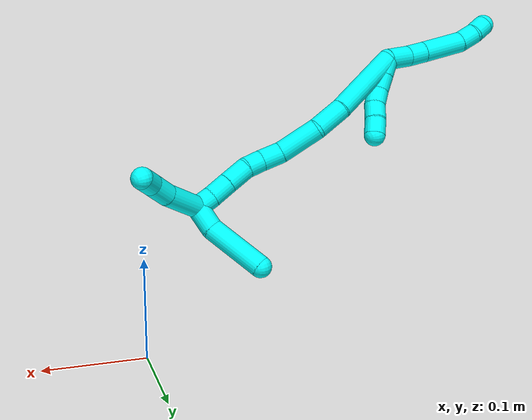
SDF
<sdf version="1.7">
 <world name="default">
  <model name="3">
   <static>0</static>
   <link name="3">
    <collision name="collision-cylinder-e_1_2_8">
     <pose>0.000597 -0.001765 0.016006 0.109822 0.037066 0.002038</pose>
     <geometry><cylinder><radius>0.0125</radius><length>0.032228</length></cylinder></geometry>
     <surface>
      <friction><ode><mu>1.16</mu><mu2>1.16</mu2><slip1>0</slip1><slip2>0</slip2></ode></friction>
      <contact><ode><kp>1e+06</kp><kd>1</kd><max_vel>0</max_vel><min_depth>0.001</min_depth></ode></contact>
     </surface>
    </collision>
    <visual name="visual-cylinder-e_1_2_8">
     <pose>0.000597 -0.001765 0.016006 0.109822 0.037066 0.002038</pose>
     <geometry><cylinder><radius>0.0125</radius><length>0.032228</length></cylinder></geometry>
     <material><ambient>0.003922 1 0.996078 1</ambient></material>
    </visual>
    <collision name="collision-cylinder-e_2_8_9">
     <pose>-0.000765 -0.006404 0.043136 0.252819 -0.168927 -0.021519</pose>
     <geometry><cylinder><radius>0.0125</radius><length>0.02331</length></cylinder></geometry>
     <surface>
      <friction><ode><mu>1.16</mu><mu2>1.16</mu2><slip1>0</slip1><slip2>0</slip2></ode></friction>
      <contact><ode><kp>1e+06</kp><kd>1</kd><max_vel>0</max_vel><min_depth>0.001</min_depth></ode></contact>
     </surface>
    </collision>
    <visual name="visual-cylinder-e_2_8_9">
     <pose>-0.000765 -0.006404 0.043136 0.252819 -0.168927 -0.021519</pose>
     <geometry><cylinder><radius>0.0125</radius><length>0.02331</length></cylinder></geometry>
     <material><ambient>0.003922 1 0.996078 1</ambient></material>
    </visual>
    <collision name="collision-cylinder-e_3_9_10">
     <pose>-0.008085 -0.016206 0.078914 0.273954 -0.20634 -0.028541</pose>
     <geometry><cylinder><radius>0.0125</radius><length>0.052328</length></cylinder></geometry>
     <surface>
      <friction><ode><mu>1.16</mu><mu2>1.16</mu2><slip1>0</slip1><slip2>0</slip2></ode></friction>
      <contact><ode><kp>1e+06</kp><kd>1</kd><max_vel>0</max_vel><min_depth>0.001</min_depth></ode></contact>
     </surface>
    </collision>
    <visual name="visual-cylinder-e_3_9_10">
     <pose>-0.008085 -0.016206 0.078914 0.273954 -0.20634 -0.028541</pose>
     <geometry><cylinder><radius>0.0125</radius><length>0.052328</length></cylinder></geometry>
     <material><ambient>0.003922 1 0.996078 1</ambient></material>
    </visual>
    <collision name="collision-cylinder-e_4_10_11">
     <pose>-0.018066 -0.024517 0.113426 0.139343 -0.434596 -0.030812</pose>
     <geometry><cylinder><radius>0.0125</radius><length>0.021948</length></cylinder></geometry>
     <surface>
      <friction><ode><mu>1.16</mu><mu2>1.16</mu2><slip1>0</slip1><slip2>0</slip2></ode></friction>
      <contact><ode><kp>1e+06</kp><kd>1</kd><max_vel>0</max_vel><min_depth>0.001</min_depth></ode></contact>
     </surface>
    </collision>
    <visual name="visual-cylinder-e_4_10_11">
     <pose>-0.018066 -0.024517 0.113426 0.139343 -0.434596 -0.030812</pose>
     <geometry><cylinder><radius>0.0125</radius><length>0.021948</length></cylinder></geometry>
     <material><ambient>0.003922 1 0.996078 1</ambient></material>
    </visual>
    <collision name="collision-cylinder-e_5_11_6">
     <pose>-0.025878 -0.024616 0.132771 -0.134444 -0.321774 0.021851</pose>
     <geometry><cylinder><radius>0.0125</radius><length>0.020186</length></cylinder></geometry>
     <surface>
      <friction><ode><mu>1.16</mu><mu2>1.16</mu2><slip1>0</slip1><slip2>0</slip2></ode></friction>
      <contact><ode><kp>1e+06</kp><kd>1</kd><max_vel>0</max_vel><min_depth>0.001</min_depth></ode></contact>
     </surface>
    </collision>
    <visual name="visual-cylinder-e_5_11_6">
     <pose>-0.025878 -0.024616 0.132771 -0.134444 -0.321774 0.021851</pose>
     <geometry><cylinder><radius>0.0125</radius><length>0.020186</length></cylinder></geometry>
     <material><ambient>0.003922 1 0.996078 1</ambient></material>
    </visual>
    <collision name="collision-cylinder-e_1_2_12">
     <pose>0.006964 -0.004071 -0.00591 2.53836 0.770407 1.83262</pose>
     <geometry><cylinder><radius>0.0125</radius><length>0.02</length></cylinder></geometry>
     <surface>
      <friction><ode><mu>1.16</mu><mu2>1.16</mu2><slip1>0</slip1><slip2>0</slip2></ode></friction>
      <contact><ode><kp>1e+06</kp><kd>1</kd><max_vel>0</max_vel><min_depth>0.001</min_depth></ode></contact>
     </surface>
    </collision>
    <visual name="visual-cylinder-e_1_2_12">
     <pose>0.006964 -0.004071 -0.00591 2.53836 0.770407 1.83262</pose>
     <geometry><cylinder><radius>0.0125</radius><length>0.02</length></cylinder></geometry>
     <material><ambient>0.003922 1 0.996078 1</ambient></material>
    </visual>
    <collision name="collision-cylinder-e_2_12_13">
     <pose>0.020896 -0.012168 -0.017756 2.54576 0.7709 1.84597</pose>
     <geometry><cylinder><radius>0.0125</radius><length>0.02</length></cylinder></geometry>
     <surface>
      <friction><ode><mu>1.16</mu><mu2>1.16</mu2><slip1>0</slip1><slip2>0</slip2></ode></friction>
      <contact><ode><kp>1e+06</kp><kd>1</kd><max_vel>0</max_vel><min_depth>0.001</min_depth></ode></contact>
     </surface>
    </collision>
    <visual name="visual-cylinder-e_2_12_13">
     <pose>0.020896 -0.012168 -0.017756 2.54576 0.7709 1.84597</pose>
     <geometry><cylinder><radius>0.0125</radius><length>0.02</length></cylinder></geometry>
     <material><ambient>0.003922 1 0.996078 1</ambient></material>
    </visual>
    <collision name="collision-cylinder-e_3_13_14">
     <pose>0.03346 -0.02148 -0.030075 2.44977 0.593902 1.40789</pose>
     <geometry><cylinder><radius>0.0125</radius><length>0.02</length></cylinder></geometry>
     <surface>
      <friction><ode><mu>1.16</mu><mu2>1.16</mu2><slip1>0</slip1><slip2>0</slip2></ode></friction>
      <contact><ode><kp>1e+06</kp><kd>1</kd><max_vel>0</max_vel><min_depth>0.001</min_depth></ode></contact>
     </surface>
    </collision>
    <visual name="visual-cylinder-e_3_13_14">
     <pose>0.03346 -0.02148 -0.030075 2.44977 0.593902 1.40789</pose>
     <geometry><cylinder><radius>0.0125</radius><length>0.02</length></cylinder></geometry>
     <material><ambient>0.003922 1 0.996078 1</ambient></material>
    </visual>
    <collision name="collision-cylinder-e_4_14_15">
     <pose>0.043509 -0.033997 -0.041739 2.20174 0.461521 0.866574</pose>
     <geometry><cylinder><radius>0.0125</radius><length>0.02</length></cylinder></geometry>
     <surface>
      <friction><ode><mu>1.16</mu><mu2>1.16</mu2><slip1>0</slip1><slip2>0</slip2></ode></friction>
      <contact><ode><kp>1e+06</kp><kd>1</kd><max_vel>0</max_vel><min_depth>0.001</min_depth></ode></contact>
     </surface>
    </collision>
    <visual name="visual-cylinder-e_4_14_15">
     <pose>0.043509 -0.033997 -0.041739 2.20174 0.461521 0.866574</pose>
     <geometry><cylinder><radius>0.0125</radius><length>0.02</length></cylinder></geometry>
     <material><ambient>0.003922 1 0.996078 1</ambient></material>
    </visual>
    <collision name="collision-cylinder-e_5_15_5">
     <pose>0.053437 -0.04761 -0.052433 2.27409 0.579337 1.14359</pose>
     <geometry><cylinder><radius>0.0125</radius><length>0.02</length></cylinder></geometry>
     <surface>
      <friction><ode><mu>1.16</mu><mu2>1.16</mu2><slip1>0</slip1><slip2>0</slip2></ode></friction>
      <contact><ode><kp>1e+06</kp><kd>1</kd><max_vel>0</max_vel><min_depth>0.001</min_depth></ode></contact>
     </surface>
    </collision>
    <visual name="visual-cylinder-e_5_15_5">
     <pose>0.053437 -0.04761 -0.052433 2.27409 0.579337 1.14359</pose>
     <geometry><cylinder><radius>0.0125</radius><length>0.02</length></cylinder></geometry>
     <material><ambient>0.003922 1 0.996078 1</ambient></material>
    </visual>
    <collision name="collision-cylinder-e_1_2_16">
     <pose>0.019473 -0.00716 -0.040913 2.96834 0.438406 2.39822</pose>
     <geometry><cylinder><radius>0.0125</radius><length>0.091745</length></cylinder></geometry>
     <surface>
      <friction><ode><mu>1.16</mu><mu2>1.16</mu2><slip1>0</slip1><slip2>0</slip2></ode></friction>
      <contact><ode><kp>1e+06</kp><kd>1</kd><max_vel>0</max_vel><min_depth>0.001</min_depth></ode></contact>
     </surface>
    </collision>
    <visual name="visual-cylinder-e_1_2_16">
     <pose>0.019473 -0.00716 -0.040913 2.96834 0.438406 2.39822</pose>
     <geometry><cylinder><radius>0.0125</radius><length>0.091745</length></cylinder></geometry>
     <material><ambient>0.003922 1 0.996078 1</ambient></material>
    </visual>
    <collision name="collision-cylinder-e_2_16_17">
     <pose>0.047945 -0.014459 -0.099012 3.13349 0.482348 3.10866</pose>
     <geometry><cylinder><radius>0.0125</radius><length>0.038801</length></cylinder></geometry>
     <surface>
      <friction><ode><mu>1.16</mu><mu2>1.16</mu2><slip1>0</slip1><slip2>0</slip2></ode></friction>
      <contact><ode><kp>1e+06</kp><kd>1</kd><max_vel>0</max_vel><min_depth>0.001</min_depth></ode></contact>
     </surface>
    </collision>
    <visual name="visual-cylinder-e_2_16_17">
     <pose>0.047945 -0.014459 -0.099012 3.13349 0.482348 3.10866</pose>
     <geometry><cylinder><radius>0.0125</radius><length>0.038801</length></cylinder></geometry>
     <material><ambient>0.003922 1 0.996078 1</ambient></material>
    </visual>
    <collision name="collision-cylinder-e_3_17_18">
     <pose>0.071999 -0.008281 -0.134868 -2.81531 0.652296 -2.23574</pose>
     <geometry><cylinder><radius>0.0125</radius><length>0.049603</length></cylinder></geometry>
     <surface>
      <friction><ode><mu>1.16</mu><mu2>1.16</mu2><slip1>0</slip1><slip2>0</slip2></ode></friction>
      <contact><ode><kp>1e+06</kp><kd>1</kd><max_vel>0</max_vel><min_depth>0.001</min_depth></ode></contact>
     </surface>
    </collision>
    <visual name="visual-cylinder-e_3_17_18">
     <pose>0.071999 -0.008281 -0.134868 -2.81531 0.652296 -2.23574</pose>
     <geometry><cylinder><radius>0.0125</radius><length>0.049603</length></cylinder></geometry>
     <material><ambient>0.003922 1 0.996078 1</ambient></material>
    </visual>
    <collision name="collision-cylinder-e_4_18_19">
     <pose>0.091735 0.001582 -0.164994 -2.84146 0.372186 -1.78832</pose>
     <geometry><cylinder><radius>0.0125</radius><length>0.025747</length></cylinder></geometry>
     <surface>
      <friction><ode><mu>1.16</mu><mu2>1.16</mu2><slip1>0</slip1><slip2>0</slip2></ode></friction>
      <contact><ode><kp>1e+06</kp><kd>1</kd><max_vel>0</max_vel><min_depth>0.001</min_depth></ode></contact>
     </surface>
    </collision>
    <visual name="visual-cylinder-e_4_18_19">
     <pose>0.091735 0.001582 -0.164994 -2.84146 0.372186 -1.78832</pose>
     <geometry><cylinder><radius>0.0125</radius><length>0.025747</length></cylinder></geometry>
     <material><ambient>0.003922 1 0.996078 1</ambient></material>
    </visual>
    <collision name="collision-cylinder-e_5_19_20">
     <pose>0.098943 0.006205 -0.186399 -3.03376 0.24731 -2.32228</pose>
     <geometry><cylinder><radius>0.0125</radius><length>0.020642</length></cylinder></geometry>
     <surface>
      <friction><ode><mu>1.16</mu><mu2>1.16</mu2><slip1>0</slip1><slip2>0</slip2></ode></friction>
      <contact><ode><kp>1e+06</kp><kd>1</kd><max_vel>0</max_vel><min_depth>0.001</min_depth></ode></contact>
     </surface>
    </collision>
    <visual name="visual-cylinder-e_5_19_20">
     <pose>0.098943 0.006205 -0.186399 -3.03376 0.24731 -2.32228</pose>
     <geometry><cylinder><radius>0.0125</radius><length>0.020642</length></cylinder></geometry>
     <material><ambient>0.003922 1 0.996078 1</ambient></material>
    </visual>
    <collision name="collision-cylinder-e_6_20_21">
     <pose>0.107941 0.00704 -0.208957 3.12243 0.474113 3.06233</pose>
     <geometry><cylinder><radius>0.0125</radius><length>0.02835</length></cylinder></geometry>
     <surface>
      <friction><ode><mu>1.16</mu><mu2>1.16</mu2><slip1>0</slip1><slip2>0</slip2></ode></friction>
      <contact><ode><kp>1e+06</kp><kd>1</kd><max_vel>0</max_vel><min_depth>0.001</min_depth></ode></contact>
     </surface>
    </collision>
    <visual name="visual-cylinder-e_6_20_21">
     <pose>0.107941 0.00704 -0.208957 3.12243 0.474113 3.06233</pose>
     <geometry><cylinder><radius>0.0125</radius><length>0.02835</length></cylinder></geometry>
     <material><ambient>0.003922 1 0.996078 1</ambient></material>
    </visual>
    <collision name="collision-cylinder-e_7_21_22">
     <pose>0.120353 0.006569 -0.232545 3.12071 0.495849 3.05912</pose>
     <geometry><cylinder><radius>0.0125</radius><length>0.02497</length></cylinder></geometry>
     <surface>
      <friction><ode><mu>1.16</mu><mu2>1.16</mu2><slip1>0</slip1><slip2>0</slip2></ode></friction>
      <contact><ode><kp>1e+06</kp><kd>1</kd><max_vel>0</max_vel><min_depth>0.001</min_depth></ode></contact>
     </surface>
    </collision>
    <visual name="visual-cylinder-e_7_21_22">
     <pose>0.120353 0.006569 -0.232545 3.12071 0.495849 3.05912</pose>
     <geometry><cylinder><radius>0.0125</radius><length>0.02497</length></cylinder></geometry>
     <material><ambient>0.003922 1 0.996078 1</ambient></material>
    </visual>
    <collision name="collision-cylinder-e_8_22_1">
     <pose>0.130322 0.006551 -0.252751 -3.11872 0.411558 -3.03212</pose>
     <geometry><cylinder><radius>0.0125</radius><length>0.020141</length></cylinder></geometry>
     <surface>
      <friction><ode><mu>1.16</mu><mu2>1.16</mu2><slip1>0</slip1><slip2>0</slip2></ode></friction>
      <contact><ode><kp>1e+06</kp><kd>1</kd><max_vel>0</max_vel><min_depth>0.001</min_depth></ode></contact>
     </surface>
    </collision>
    <visual name="visual-cylinder-e_8_22_1">
     <pose>0.130322 0.006551 -0.252751 -3.11872 0.411558 -3.03212</pose>
     <geometry><cylinder><radius>0.0125</radius><length>0.020141</length></cylinder></geometry>
     <material><ambient>0.003922 1 0.996078 1</ambient></material>
    </visual>
    <collision name="collision-cylinder-e_1_1_23">
     <pose>0.121739 0.011421 -0.282747 -2.92091 -0.534891 2.37313</pose>
     <geometry><cylinder><radius>0.0125</radius><length>0.049481</length></cylinder></geometry>
     <surface>
      <friction><ode><mu>1.16</mu><mu2>1.16</mu2><slip1>0</slip1><slip2>0</slip2></ode></friction>
      <contact><ode><kp>1e+06</kp><kd>1</kd><max_vel>0</max_vel><min_depth>0.001</min_depth></ode></contact>
     </surface>
    </collision>
    <visual name="visual-cylinder-e_1_1_23">
     <pose>0.121739 0.011421 -0.282747 -2.92091 -0.534891 2.37313</pose>
     <geometry><cylinder><radius>0.0125</radius><length>0.049481</length></cylinder></geometry>
     <material><ambient>0.003922 1 0.996078 1</ambient></material>
    </visual>
    <collision name="collision-cylinder-e_2_23_24">
     <pose>0.100886 0.018933 -0.313387 -2.86021 -0.675998 2.37552</pose>
     <geometry><cylinder><radius>0.0125</radius><length>0.026344</length></cylinder></geometry>
     <surface>
      <friction><ode><mu>1.16</mu><mu2>1.16</mu2><slip1>0</slip1><slip2>0</slip2></ode></friction>
      <contact><ode><kp>1e+06</kp><kd>1</kd><max_vel>0</max_vel><min_depth>0.001</min_depth></ode></contact>
     </surface>
    </collision>
    <visual name="visual-cylinder-e_2_23_24">
     <pose>0.100886 0.018933 -0.313387 -2.86021 -0.675998 2.37552</pose>
     <geometry><cylinder><radius>0.0125</radius><length>0.026344</length></cylinder></geometry>
     <material><ambient>0.003922 1 0.996078 1</ambient></material>
    </visual>
    <collision name="collision-cylinder-e_3_24_4">
     <pose>0.084694 0.020618 -0.332288 3.01292 -0.717858 -2.80147</pose>
     <geometry><cylinder><radius>0.0125</radius><length>0.024175</length></cylinder></geometry>
     <surface>
      <friction><ode><mu>1.16</mu><mu2>1.16</mu2><slip1>0</slip1><slip2>0</slip2></ode></friction>
      <contact><ode><kp>1e+06</kp><kd>1</kd><max_vel>0</max_vel><min_depth>0.001</min_depth></ode></contact>
     </surface>
    </collision>
    <visual name="visual-cylinder-e_3_24_4">
     <pose>0.084694 0.020618 -0.332288 3.01292 -0.717858 -2.80147</pose>
     <geometry><cylinder><radius>0.0125</radius><length>0.024175</length></cylinder></geometry>
     <material><ambient>0.003922 1 0.996078 1</ambient></material>
    </visual>
    <collision name="collision-cylinder-e_1_1_25">
     <pose>0.141371 -0.006089 -0.26025 1.43709 0.496252 0.436057</pose>
     <geometry><cylinder><radius>0.0125</radius><length>0.029491</length></cylinder></geometry>
     <surface>
      <friction><ode><mu>1.16</mu><mu2>1.16</mu2><slip1>0</slip1><slip2>0</slip2></ode></friction>
      <contact><ode><kp>1e+06</kp><kd>1</kd><max_vel>0</max_vel><min_depth>0.001</min_depth></ode></contact>
     </surface>
    </collision>
    <visual name="visual-cylinder-e_1_1_25">
     <pose>0.141371 -0.006089 -0.26025 1.43709 0.496252 0.436057</pose>
     <geometry><cylinder><radius>0.0125</radius><length>0.029491</length></cylinder></geometry>
     <material><ambient>0.003922 1 0.996078 1</ambient></material>
    </visual>
    <collision name="collision-cylinder-e_2_25_3">
     <pose>0.154209 -0.052729 -0.250314 1.33251 0.165757 0.130428</pose>
     <geometry><cylinder><radius>0.0125</radius><length>0.070509</length></cylinder></geometry>
     <surface>
      <friction><ode><mu>1.16</mu><mu2>1.16</mu2><slip1>0</slip1><slip2>0</slip2></ode></friction>
      <contact><ode><kp>1e+06</kp><kd>1</kd><max_vel>0</max_vel><min_depth>0.001</min_depth></ode></contact>
     </surface>
    </collision>
    <visual name="visual-cylinder-e_2_25_3">
     <pose>0.154209 -0.052729 -0.250314 1.33251 0.165757 0.130428</pose>
     <geometry><cylinder><radius>0.0125</radius><length>0.070509</length></cylinder></geometry>
     <material><ambient>0.003922 1 0.996078 1</ambient></material>
    </visual>
    <collision name="collision-sphere-3">
     <pose>0.160026 -0.086518 -0.242107 0 -0 0</pose>
     <geometry><sphere><radius>0.0125</radius></sphere></geometry>
     <surface>
      <friction><ode><mu>1.16</mu><mu2>1.16</mu2><slip1>0</slip1><slip2>0</slip2></ode></friction>
      <contact><ode><kp>1e+06</kp><kd>1</kd><max_vel>0</max_vel><min_depth>0.001</min_depth></ode></contact>
     </surface>
    </collision>
    <visual name="visual-sphere-3">
     <pose>0.160026 -0.086518 -0.242107 0 -0 0</pose>
     <geometry><sphere><radius>0.0125</radius></sphere></geometry>
     <material><ambient>0.003922 1 0.996078 1</ambient></material>
    </visual>
    <collision name="collision-sphere-25">
     <pose>0.148392 -0.018941 -0.258522 0 -0 0</pose>
     <geometry><sphere><radius>0.0125</radius></sphere></geometry>
     <surface>
      <friction><ode><mu>1.16</mu><mu2>1.16</mu2><slip1>0</slip1><slip2>0</slip2></ode></friction>
      <contact><ode><kp>1e+06</kp><kd>1</kd><max_vel>0</max_vel><min_depth>0.001</min_depth></ode></contact>
     </surface>
    </collision>
    <visual name="visual-sphere-25">
     <pose>0.148392 -0.018941 -0.258522 0 -0 0</pose>
     <geometry><sphere><radius>0.0125</radius></sphere></geometry>
     <material><ambient>0.003922 1 0.996078 1</ambient></material>
    </visual>
    <collision name="collision-sphere-4">
     <pose>0.076743 0.01945 -0.341317 0 -0 0</pose>
     <geometry><sphere><radius>0.0125</radius></sphere></geometry>
     <surface>
      <friction><ode><mu>1.16</mu><mu2>1.16</mu2><slip1>0</slip1><slip2>0</slip2></ode></friction>
      <contact><ode><kp>1e+06</kp><kd>1</kd><max_vel>0</max_vel><min_depth>0.001</min_depth></ode></contact>
     </surface>
    </collision>
    <visual name="visual-sphere-4">
     <pose>0.076743 0.01945 -0.341317 0 -0 0</pose>
     <geometry><sphere><radius>0.0125</radius></sphere></geometry>
     <material><ambient>0.003922 1 0.996078 1</ambient></material>
    </visual>
    <collision name="collision-sphere-24">
     <pose>0.092645 0.021787 -0.323258 0 -0 0</pose>
     <geometry><sphere><radius>0.0125</radius></sphere></geometry>
     <surface>
      <friction><ode><mu>1.16</mu><mu2>1.16</mu2><slip1>0</slip1><slip2>0</slip2></ode></friction>
      <contact><ode><kp>1e+06</kp><kd>1</kd><max_vel>0</max_vel><min_depth>0.001</min_depth></ode></contact>
     </surface>
    </collision>
    <visual name="visual-sphere-24">
     <pose>0.092645 0.021787 -0.323258 0 -0 0</pose>
     <geometry><sphere><radius>0.0125</radius></sphere></geometry>
     <material><ambient>0.003922 1 0.996078 1</ambient></material>
    </visual>
    <collision name="collision-sphere-23">
     <pose>0.109128 0.01608 -0.303516 0 -0 0</pose>
     <geometry><sphere><radius>0.0125</radius></sphere></geometry>
     <surface>
      <friction><ode><mu>1.16</mu><mu2>1.16</mu2><slip1>0</slip1><slip2>0</slip2></ode></friction>
      <contact><ode><kp>1e+06</kp><kd>1</kd><max_vel>0</max_vel><min_depth>0.001</min_depth></ode></contact>
     </surface>
    </collision>
    <visual name="visual-sphere-23">
     <pose>0.109128 0.01608 -0.303516 0 -0 0</pose>
     <geometry><sphere><radius>0.0125</radius></sphere></geometry>
     <material><ambient>0.003922 1 0.996078 1</ambient></material>
    </visual>
    <collision name="collision-sphere-1">
     <pose>0.13435 0.006762 -0.261979 0 -0 0</pose>
     <geometry><sphere><radius>0.0125</radius></sphere></geometry>
     <surface>
      <friction><ode><mu>1.16</mu><mu2>1.16</mu2><slip1>0</slip1><slip2>0</slip2></ode></friction>
      <contact><ode><kp>1e+06</kp><kd>1</kd><max_vel>0</max_vel><min_depth>0.001</min_depth></ode></contact>
     </surface>
    </collision>
    <visual name="visual-sphere-1">
     <pose>0.13435 0.006762 -0.261979 0 -0 0</pose>
     <geometry><sphere><radius>0.0125</radius></sphere></geometry>
     <material><ambient>0.003922 1 0.996078 1</ambient></material>
    </visual>
    <collision name="collision-sphere-22">
     <pose>0.126293 0.00634 -0.243524 0 -0 0</pose>
     <geometry><sphere><radius>0.0125</radius></sphere></geometry>
     <surface>
      <friction><ode><mu>1.16</mu><mu2>1.16</mu2><slip1>0</slip1><slip2>0</slip2></ode></friction>
      <contact><ode><kp>1e+06</kp><kd>1</kd><max_vel>0</max_vel><min_depth>0.001</min_depth></ode></contact>
     </surface>
    </collision>
    <visual name="visual-sphere-22">
     <pose>0.126293 0.00634 -0.243524 0 -0 0</pose>
     <geometry><sphere><radius>0.0125</radius></sphere></geometry>
     <material><ambient>0.003922 1 0.996078 1</ambient></material>
    </visual>
    <collision name="collision-sphere-21">
     <pose>0.114413 0.006798 -0.221567 0 -0 0</pose>
     <geometry><sphere><radius>0.0125</radius></sphere></geometry>
     <surface>
      <friction><ode><mu>1.16</mu><mu2>1.16</mu2><slip1>0</slip1><slip2>0</slip2></ode></friction>
      <contact><ode><kp>1e+06</kp><kd>1</kd><max_vel>0</max_vel><min_depth>0.001</min_depth></ode></contact>
     </surface>
    </collision>
    <visual name="visual-sphere-21">
     <pose>0.114413 0.006798 -0.221567 0 -0 0</pose>
     <geometry><sphere><radius>0.0125</radius></sphere></geometry>
     <material><ambient>0.003922 1 0.996078 1</ambient></material>
    </visual>
    <collision name="collision-sphere-6">
     <pose>-0.02907 -0.023332 0.14226 0 -0 0</pose>
     <geometry><sphere><radius>0.0125</radius></sphere></geometry>
     <surface>
      <friction><ode><mu>1.16</mu><mu2>1.16</mu2><slip1>0</slip1><slip2>0</slip2></ode></friction>
      <contact><ode><kp>1e+06</kp><kd>1</kd><max_vel>0</max_vel><min_depth>0.001</min_depth></ode></contact>
     </surface>
    </collision>
    <visual name="visual-sphere-6">
     <pose>-0.02907 -0.023332 0.14226 0 -0 0</pose>
     <geometry><sphere><radius>0.0125</radius></sphere></geometry>
     <material><ambient>0.003922 1 0.996078 1</ambient></material>
    </visual>
    <collision name="collision-sphere-11">
     <pose>-0.022687 -0.025899 0.123283 0 -0 0</pose>
     <geometry><sphere><radius>0.0125</radius></sphere></geometry>
     <surface>
      <friction><ode><mu>1.16</mu><mu2>1.16</mu2><slip1>0</slip1><slip2>0</slip2></ode></friction>
      <contact><ode><kp>1e+06</kp><kd>1</kd><max_vel>0</max_vel><min_depth>0.001</min_depth></ode></contact>
     </surface>
    </collision>
    <visual name="visual-sphere-11">
     <pose>-0.022687 -0.025899 0.123283 0 -0 0</pose>
     <geometry><sphere><radius>0.0125</radius></sphere></geometry>
     <material><ambient>0.003922 1 0.996078 1</ambient></material>
    </visual>
    <collision name="collision-sphere-10">
     <pose>-0.013446 -0.023134 0.103568 0 -0 0</pose>
     <geometry><sphere><radius>0.0125</radius></sphere></geometry>
     <surface>
      <friction><ode><mu>1.16</mu><mu2>1.16</mu2><slip1>0</slip1><slip2>0</slip2></ode></friction>
      <contact><ode><kp>1e+06</kp><kd>1</kd><max_vel>0</max_vel><min_depth>0.001</min_depth></ode></contact>
     </surface>
    </collision>
    <visual name="visual-sphere-10">
     <pose>-0.013446 -0.023134 0.103568 0 -0 0</pose>
     <geometry><sphere><radius>0.0125</radius></sphere></geometry>
     <material><ambient>0.003922 1 0.996078 1</ambient></material>
    </visual>
    <collision name="collision-sphere-9">
     <pose>-0.002725 -0.009278 0.05426 0 -0 0</pose>
     <geometry><sphere><radius>0.0125</radius></sphere></geometry>
     <surface>
      <friction><ode><mu>1.16</mu><mu2>1.16</mu2><slip1>0</slip1><slip2>0</slip2></ode></friction>
      <contact><ode><kp>1e+06</kp><kd>1</kd><max_vel>0</max_vel><min_depth>0.001</min_depth></ode></contact>
     </surface>
    </collision>
    <visual name="visual-sphere-9">
     <pose>-0.002725 -0.009278 0.05426 0 -0 0</pose>
     <geometry><sphere><radius>0.0125</radius></sphere></geometry>
     <material><ambient>0.003922 1 0.996078 1</ambient></material>
    </visual>
    <collision name="collision-sphere-2">
     <geometry><sphere><radius>0.0125</radius></sphere></geometry>
     <surface>
      <friction><ode><mu>1.16</mu><mu2>1.16</mu2><slip1>0</slip1><slip2>0</slip2></ode></friction>
      <contact><ode><kp>1e+06</kp><kd>1</kd><max_vel>0</max_vel><min_depth>0.001</min_depth></ode></contact>
     </surface>
    </collision>
    <visual name="visual-sphere-2">
     <geometry><sphere><radius>0.0125</radius></sphere></geometry>
     <material><ambient>0.003922 1 0.996078 1</ambient></material>
    </visual>
    <collision name="collision-sphere-19">
     <pose>0.096417 0.005128 -0.17645 0 -0 0</pose>
     <geometry><sphere><radius>0.0125</radius></sphere></geometry>
     <surface>
      <friction><ode><mu>1.16</mu><mu2>1.16</mu2><slip1>0</slip1><slip2>0</slip2></ode></friction>
      <contact><ode><kp>1e+06</kp><kd>1</kd><max_vel>0</max_vel><min_depth>0.001</min_depth></ode></contact>
     </surface>
    </collision>
    <visual name="visual-sphere-19">
     <pose>0.096417 0.005128 -0.17645 0 -0 0</pose>
     <geometry><sphere><radius>0.0125</radius></sphere></geometry>
     <material><ambient>0.003922 1 0.996078 1</ambient></material>
    </visual>
    <collision name="collision-sphere-8">
     <pose>0.001194 -0.00353 0.032012 0 -0 0</pose>
     <geometry><sphere><radius>0.0125</radius></sphere></geometry>
     <surface>
      <friction><ode><mu>1.16</mu><mu2>1.16</mu2><slip1>0</slip1><slip2>0</slip2></ode></friction>
      <contact><ode><kp>1e+06</kp><kd>1</kd><max_vel>0</max_vel><min_depth>0.001</min_depth></ode></contact>
     </surface>
    </collision>
    <visual name="visual-sphere-8">
     <pose>0.001194 -0.00353 0.032012 0 -0 0</pose>
     <geometry><sphere><radius>0.0125</radius></sphere></geometry>
     <material><ambient>0.003922 1 0.996078 1</ambient></material>
    </visual>
    <collision name="collision-sphere-12">
     <pose>0.013929 -0.008142 -0.011819 0 -0 0</pose>
     <geometry><sphere><radius>0.0125</radius></sphere></geometry>
     <surface>
      <friction><ode><mu>1.16</mu><mu2>1.16</mu2><slip1>0</slip1><slip2>0</slip2></ode></friction>
      <contact><ode><kp>1e+06</kp><kd>1</kd><max_vel>0</max_vel><min_depth>0.001</min_depth></ode></contact>
     </surface>
    </collision>
    <visual name="visual-sphere-12">
     <pose>0.013929 -0.008142 -0.011819 0 -0 0</pose>
     <geometry><sphere><radius>0.0125</radius></sphere></geometry>
     <material><ambient>0.003922 1 0.996078 1</ambient></material>
    </visual>
    <collision name="collision-sphere-13">
     <pose>0.027864 -0.016193 -0.023693 0 -0 0</pose>
     <geometry><sphere><radius>0.0125</radius></sphere></geometry>
     <surface>
      <friction><ode><mu>1.16</mu><mu2>1.16</mu2><slip1>0</slip1><slip2>0</slip2></ode></friction>
      <contact><ode><kp>1e+06</kp><kd>1</kd><max_vel>0</max_vel><min_depth>0.001</min_depth></ode></contact>
     </surface>
    </collision>
    <visual name="visual-sphere-13">
     <pose>0.027864 -0.016193 -0.023693 0 -0 0</pose>
     <geometry><sphere><radius>0.0125</radius></sphere></geometry>
     <material><ambient>0.003922 1 0.996078 1</ambient></material>
    </visual>
    <collision name="collision-sphere-14">
     <pose>0.039056 -0.026767 -0.036457 0 -0 0</pose>
     <geometry><sphere><radius>0.0125</radius></sphere></geometry>
     <surface>
      <friction><ode><mu>1.16</mu><mu2>1.16</mu2><slip1>0</slip1><slip2>0</slip2></ode></friction>
      <contact><ode><kp>1e+06</kp><kd>1</kd><max_vel>0</max_vel><min_depth>0.001</min_depth></ode></contact>
     </surface>
    </collision>
    <visual name="visual-sphere-14">
     <pose>0.039056 -0.026767 -0.036457 0 -0 0</pose>
     <geometry><sphere><radius>0.0125</radius></sphere></geometry>
     <material><ambient>0.003922 1 0.996078 1</ambient></material>
    </visual>
    <collision name="collision-sphere-15">
     <pose>0.047962 -0.041227 -0.047021 0 -0 0</pose>
     <geometry><sphere><radius>0.0125</radius></sphere></geometry>
     <surface>
      <friction><ode><mu>1.16</mu><mu2>1.16</mu2><slip1>0</slip1><slip2>0</slip2></ode></friction>
      <contact><ode><kp>1e+06</kp><kd>1</kd><max_vel>0</max_vel><min_depth>0.001</min_depth></ode></contact>
     </surface>
    </collision>
    <visual name="visual-sphere-15">
     <pose>0.047962 -0.041227 -0.047021 0 -0 0</pose>
     <geometry><sphere><radius>0.0125</radius></sphere></geometry>
     <material><ambient>0.003922 1 0.996078 1</ambient></material>
    </visual>
    <collision name="collision-sphere-5">
     <pose>0.058912 -0.053992 -0.057845 0 -0 0</pose>
     <geometry><sphere><radius>0.0125</radius></sphere></geometry>
     <surface>
      <friction><ode><mu>1.16</mu><mu2>1.16</mu2><slip1>0</slip1><slip2>0</slip2></ode></friction>
      <contact><ode><kp>1e+06</kp><kd>1</kd><max_vel>0</max_vel><min_depth>0.001</min_depth></ode></contact>
     </surface>
    </collision>
    <visual name="visual-sphere-5">
     <pose>0.058912 -0.053992 -0.057845 0 -0 0</pose>
     <geometry><sphere><radius>0.0125</radius></sphere></geometry>
     <material><ambient>0.003922 1 0.996078 1</ambient></material>
    </visual>
    <collision name="collision-sphere-16">
     <pose>0.038946 -0.01432 -0.081826 0 -0 0</pose>
     <geometry><sphere><radius>0.0125</radius></sphere></geometry>
     <surface>
      <friction><ode><mu>1.16</mu><mu2>1.16</mu2><slip1>0</slip1><slip2>0</slip2></ode></friction>
      <contact><ode><kp>1e+06</kp><kd>1</kd><max_vel>0</max_vel><min_depth>0.001</min_depth></ode></contact>
     </surface>
    </collision>
    <visual name="visual-sphere-16">
     <pose>0.038946 -0.01432 -0.081826 0 -0 0</pose>
     <geometry><sphere><radius>0.0125</radius></sphere></geometry>
     <material><ambient>0.003922 1 0.996078 1</ambient></material>
    </visual>
    <collision name="collision-sphere-17">
     <pose>0.056944 -0.014598 -0.116198 0 -0 0</pose>
     <geometry><sphere><radius>0.0125</radius></sphere></geometry>
     <surface>
      <friction><ode><mu>1.16</mu><mu2>1.16</mu2><slip1>0</slip1><slip2>0</slip2></ode></friction>
      <contact><ode><kp>1e+06</kp><kd>1</kd><max_vel>0</max_vel><min_depth>0.001</min_depth></ode></contact>
     </surface>
    </collision>
    <visual name="visual-sphere-17">
     <pose>0.056944 -0.014598 -0.116198 0 -0 0</pose>
     <geometry><sphere><radius>0.0125</radius></sphere></geometry>
     <material><ambient>0.003922 1 0.996078 1</ambient></material>
    </visual>
    <collision name="collision-sphere-18">
     <pose>0.087054 -0.001963 -0.153538 0 -0 0</pose>
     <geometry><sphere><radius>0.0125</radius></sphere></geometry>
     <surface>
      <friction><ode><mu>1.16</mu><mu2>1.16</mu2><slip1>0</slip1><slip2>0</slip2></ode></friction>
      <contact><ode><kp>1e+06</kp><kd>1</kd><max_vel>0</max_vel><min_depth>0.001</min_depth></ode></contact>
     </surface>
    </collision>
    <visual name="visual-sphere-18">
     <pose>0.087054 -0.001963 -0.153538 0 -0 0</pose>
     <geometry><sphere><radius>0.0125</radius></sphere></geometry>
     <material><ambient>0.003922 1 0.996078 1</ambient></material>
    </visual>
    <collision name="collision-sphere-20">
     <pose>0.10147 0.007282 -0.196348 0 -0 0</pose>
     <geometry><sphere><radius>0.0125</radius></sphere></geometry>
     <surface>
      <friction><ode><mu>1.16</mu><mu2>1.16</mu2><slip1>0</slip1><slip2>0</slip2></ode></friction>
      <contact><ode><kp>1e+06</kp><kd>1</kd><max_vel>0</max_vel><min_depth>0.001</min_depth></ode></contact>
     </surface>
    </collision>
    <visual name="visual-sphere-20">
     <pose>0.10147 0.007282 -0.196348 0 -0 0</pose>
     <geometry><sphere><radius>0.0125</radius></sphere></geometry>
     <material><ambient>0.003922 1 0.996078 1</ambient></material>
    </visual>
    <inertial>
     <pose>0.063878 -0.010367 -0.115926 0 -0 0</pose>
     <mass>0.75</mass>
     <inertia>
      <ixx>4.2e-05</ixx>
      <ixy>0</ixy>
      <ixz>0</ixz>
      <iyy>0.000161</iyy>
      <iyz>0</iyz>
      <izz>-1.3e-05</izz>
     </inertia>
    </inertial>
   </link>
   <pose>-0.351067 -0.292098 0.212567 1.38894 1.19217 -1.25675</pose>
  </model>
 </world>
</sdf>
